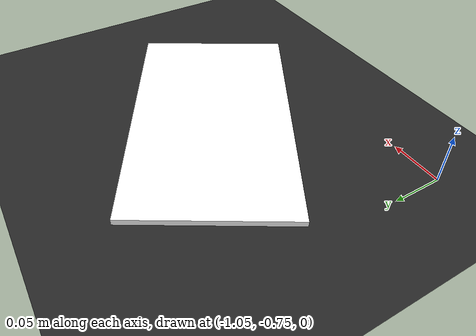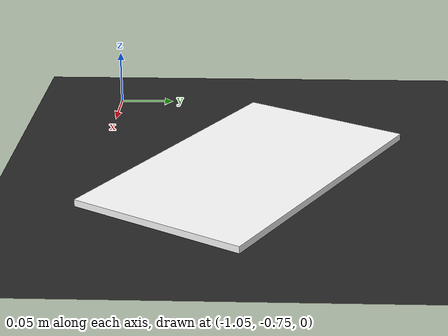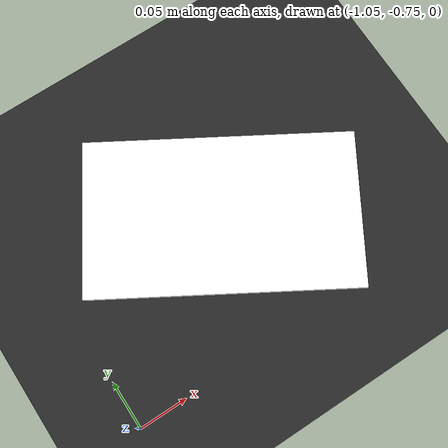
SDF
<?xml version="1.0"?>
<sdf version="1.6">
    <world name="line_world">

        <physics type="ode">...</physics>

        <light name="sun" type="directional">...</light>
        <light name="fill" type="directional">...</light>

        <!-- Dark gray ground (collision + visual) -->
        <model name="ground">
            <static>true</static>
            <link name="link">
                <collision name="col">
                    <geometry><plane>...</plane></geometry>
                </collision>
                <visual name="vis">
                    <geometry><plane>...</plane></geometry>
                    <material>
                        <ambient>0.15 0.15 0.15 1</ambient>   <!-- dark gray -->
                        <diffuse>0.15 0.15 0.15 1</diffuse>
                    </material>
                </visual>
            </link>
        </model>

        <!-- White line (80 box segments forming a sine wave) -->
        <model name="white_line">
            <static>true</static>
            <link name="link">
                <visual name="seg0">
                    <pose>-0.8750 -0.6193 0.003 0 0 -0.5326</pose>
                    <geometry><box><size>0.275 0.16 0.006</size></box></geometry>
                    <material>
                        <ambient>1.0 1.0 1.0 1</ambient>   <!-- bright white -->
                        <diffuse>1.0 1.0 1.0 1</diffuse>
                    </material>
                </visual>
                <!-- ... 79 more segments ... -->
            </link>
        </model>

    </world>
</sdf>
